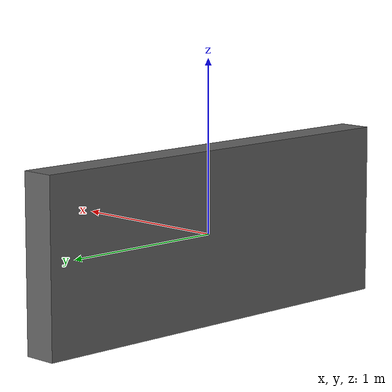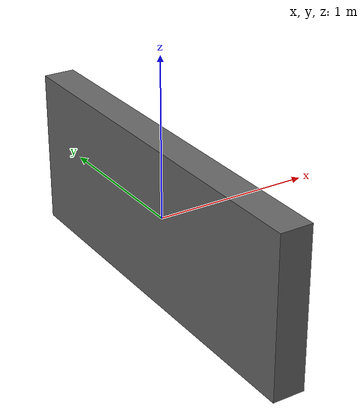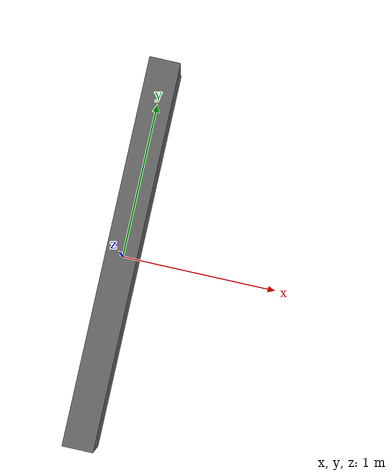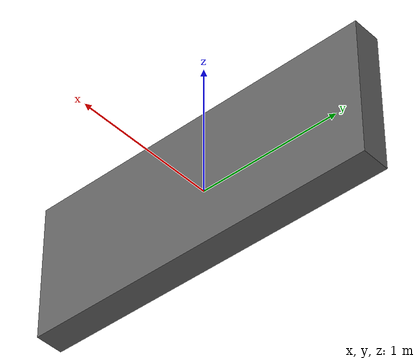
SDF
<?xml version="1.0"?>
<sdf version="1.7">
  <model name="boxObstacle">
    <link name="box_body">
      <visual name="box">
        <pose> 0 0 0 0 0 0</pose>
        <geometry>
          <box>
            <size>0.2 2.5 1</size>
          </box>
        </geometry>
        <material>
          <ambient>0.4 0.4 0.4 1</ambient>
          <diffuse>0.4 0.4 0.4 1</diffuse>
          <specular>0.4 0.4 0.4 1</specular>
          <emissive>0.4 0.4 0.4 1</emissive>
        </material>
      </visual>
      <collision name="box">
        <pose> 0 0 0 0 0 0</pose>
        <geometry>
          <box>
            <size>0.2 2.5 1</size>
          </box>
        </geometry>
      </collision>
    </link>
  </model>
</sdf>
